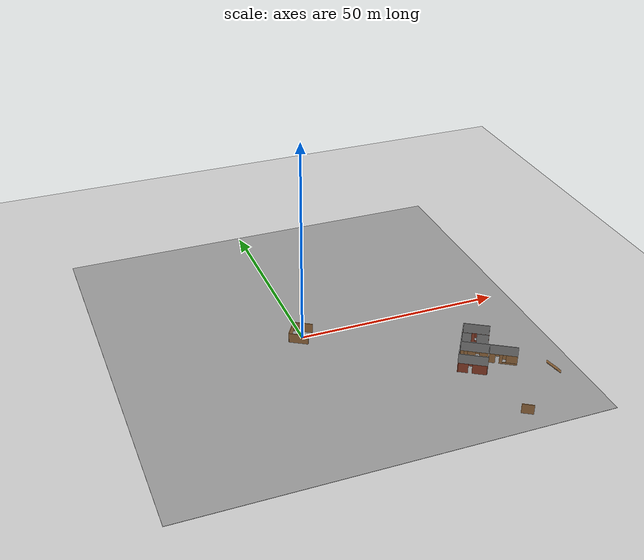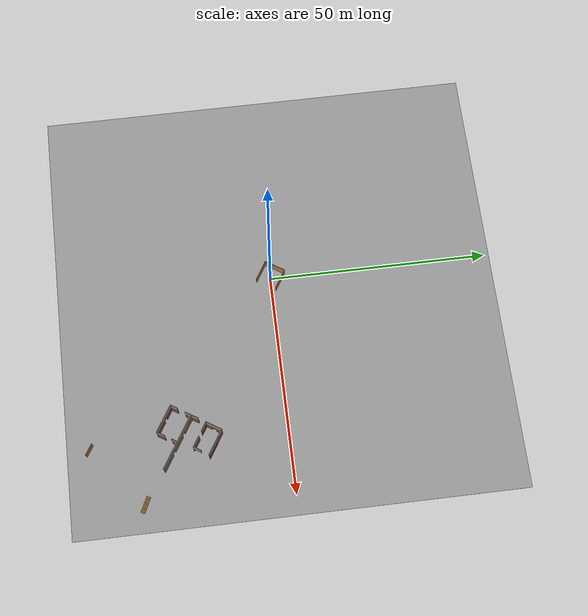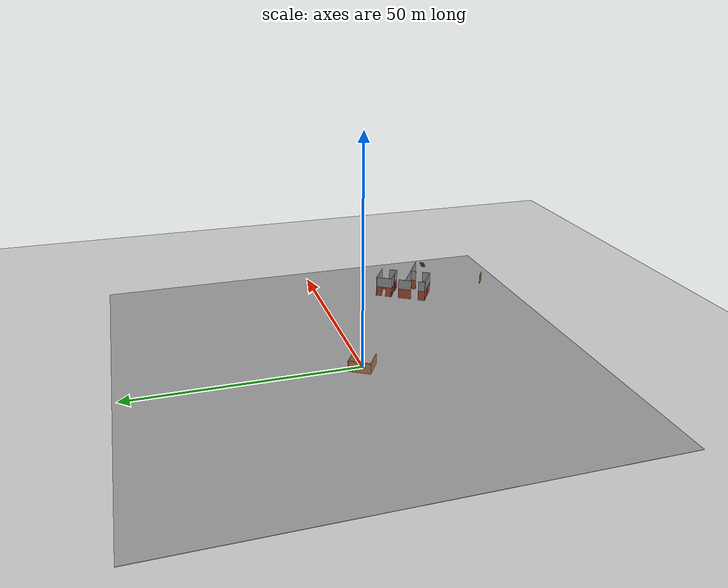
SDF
<sdf version="1.7">
 <world name="default">
  <model name="ground_plane">
   <static>1</static>
   <link name="link">
    <collision name="collision">
     <geometry><plane><normal>0 0 1</normal><size>100 100</size></plane></geometry>
     <surface><friction><ode><mu>100</mu><mu2>50</mu2></ode></friction></surface>
    </collision>
    <visual name="visual">
     <cast_shadows>0</cast_shadows>
     <geometry><plane><normal>0 0 1</normal><size>100 100</size></plane></geometry>
     <material>
      <script><uri>file://media/materials/scripts/gazebo.material</uri><name>Gazebo/Grey</name></script>
     </material>
    </visual>
   </link>
  </model>
  <model name="new_world">
   <pose>22.5456 -21.389 0 0 0 -0.55945</pose>
   <link name="Stairs_4">
    <visual name="Stairs_4_Visual_0">
     <pose>29.6033 4.33952 0.083333 0 -0 -1.5708</pose>
     <geometry><box><size>1 0.233333 0.166667</size></box></geometry>
     <material>
      <script><uri>file://media/materials/scripts/gazebo.material</uri><name>Gazebo/Wood</name></script>
      <ambient>1 1 1 1</ambient>
     </material>
     <meta><layer>0</layer></meta>
    </visual>
    <collision name="Stairs_4_Collision_0">
     <geometry><box><size>1 0.233333 0.166667</size></box></geometry>
     <pose>29.6033 4.33952 0.083333 0 -0 -1.5708</pose>
    </collision>
    <visual name="Stairs_4_Visual_1">
     <pose>29.3699 4.33952 0.25 0 -0 -1.5708</pose>
     <geometry><box><size>1 0.233333 0.166667</size></box></geometry>
     <material>
      <script><uri>file://media/materials/scripts/gazebo.material</uri><name>Gazebo/Wood</name></script>
      <ambient>1 1 1 1</ambient>
     </material>
     <meta><layer>0</layer></meta>
    </visual>
    <collision name="Stairs_4_Collision_1">
     <geometry><box><size>1 0.233333 0.166667</size></box></geometry>
     <pose>29.3699 4.33952 0.25 0 -0 -1.5708</pose>
    </collision>
    <visual name="Stairs_4_Visual_2">
     <pose>29.1366 4.33952 0.416667 0 -0 -1.5708</pose>
     <geometry><box><size>1 0.233333 0.166667</size></box></geometry>
     <material>
      <script><uri>file://media/materials/scripts/gazebo.material</uri><name>Gazebo/Wood</name></script>
      <ambient>1 1 1 1</ambient>
     </material>
     <meta><layer>0</layer></meta>
    </visual>
    <collision name="Stairs_4_Collision_2">
     <geometry><box><size>1 0.233333 0.166667</size></box></geometry>
     <pose>29.1366 4.33952 0.416667 0 -0 -1.5708</pose>
    </collision>
    <visual name="Stairs_4_Visual_3">
     <pose>28.9033 4.33952 0.583333 0 -0 -1.5708</pose>
     <geometry><box><size>1 0.233333 0.166667</size></box></geometry>
     <material>
      <script><uri>file://media/materials/scripts/gazebo.material</uri><name>Gazebo/Wood</name></script>
      <ambient>1 1 1 1</ambient>
     </material>
     <meta><layer>0</layer></meta>
    </visual>
    <collision name="Stairs_4_Collision_3">
     <geometry><box><size>1 0.233333 0.166667</size></box></geometry>
     <pose>28.9033 4.33952 0.583333 0 -0 -1.5708</pose>
    </collision>
    <visual name="Stairs_4_Visual_4">
     <pose>28.6699 4.33952 0.75 0 -0 -1.5708</pose>
     <geometry><box><size>1 0.233333 0.166667</size></box></geometry>
     <material>
      <script><uri>file://media/materials/scripts/gazebo.material</uri><name>Gazebo/Wood</name></script>
      <ambient>1 1 1 1</ambient>
     </material>
     <meta><layer>0</layer></meta>
    </visual>
    <collision name="Stairs_4_Collision_4">
     <geometry><box><size>1 0.233333 0.166667</size></box></geometry>
     <pose>28.6699 4.33952 0.75 0 -0 -1.5708</pose>
    </collision>
    <visual name="Stairs_4_Visual_5">
     <pose>28.4366 4.33952 0.916667 0 -0 -1.5708</pose>
     <geometry><box><size>1 0.233333 0.166667</size></box></geometry>
     <material>
      <script><uri>file://media/materials/scripts/gazebo.material</uri><name>Gazebo/Wood</name></script>
      <ambient>1 1 1 1</ambient>
     </material>
     <meta><layer>0</layer></meta>
    </visual>
    <collision name="Stairs_4_Collision_5">
     <geometry><box><size>1 0.233333 0.166667</size></box></geometry>
     <pose>28.4366 4.33952 0.916667 0 -0 -1.5708</pose>
    </collision>
    <visual name="Stairs_4_Visual_6">
     <pose>28.2033 4.33952 1.08333 0 -0 -1.5708</pose>
     <geometry><box><size>1 0.233333 0.166667</size></box></geometry>
     <material>
      <script><uri>file://media/materials/scripts/gazebo.material</uri><name>Gazebo/Wood</name></script>
      <ambient>1 1 1 1</ambient>
     </material>
     <meta><layer>0</layer></meta>
    </visual>
    <collision name="Stairs_4_Collision_6">
     <geometry><box><size>1 0.233333 0.166667</size></box></geometry>
     <pose>28.2033 4.33952 1.08333 0 -0 -1.5708</pose>
    </collision>
    <visual name="Stairs_4_Visual_7">
     <pose>27.9699 4.33952 1.25 0 -0 -1.5708</pose>
     <geometry><box><size>1 0.233333 0.166667</size></box></geometry>
     <material>
      <script><uri>file://media/materials/scripts/gazebo.material</uri><name>Gazebo/Wood</name></script>
      <ambient>1 1 1 1</ambient>
     </material>
     <meta><layer>0</layer></meta>
    </visual>
    <collision name="Stairs_4_Collision_7">
     <geometry><box><size>1 0.233333 0.166667</size></box></geometry>
     <pose>27.9699 4.33952 1.25 0 -0 -1.5708</pose>
    </collision>
    <visual name="Stairs_4_Visual_8">
     <pose>27.7366 4.33952 1.41667 0 -0 -1.5708</pose>
     <geometry><box><size>1 0.233333 0.166667</size></box></geometry>
     <material>
      <script><uri>file://media/materials/scripts/gazebo.material</uri><name>Gazebo/Wood</name></script>
      <ambient>1 1 1 1</ambient>
     </material>
     <meta><layer>0</layer></meta>
    </visual>
    <collision name="Stairs_4_Collision_8">
     <geometry><box><size>1 0.233333 0.166667</size></box></geometry>
     <pose>27.7366 4.33952 1.41667 0 -0 -1.5708</pose>
    </collision>
    <visual name="Stairs_4_Visual_9">
     <pose>27.5033 4.33952 1.58333 0 -0 -1.5708</pose>
     <geometry><box><size>1 0.233333 0.166667</size></box></geometry>
     <material>
      <script><uri>file://media/materials/scripts/gazebo.material</uri><name>Gazebo/Wood</name></script>
      <ambient>1 1 1 1</ambient>
     </material>
     <meta><layer>0</layer></meta>
    </visual>
    <collision name="Stairs_4_Collision_9">
     <geometry><box><size>1 0.233333 0.166667</size></box></geometry>
     <pose>27.5033 4.33952 1.58333 0 -0 -1.5708</pose>
    </collision>
    <visual name="Stairs_4_Visual_10">
     <pose>27.2699 4.33952 1.75 0 -0 -1.5708</pose>
     <geometry><box><size>1 0.233333 0.166667</size></box></geometry>
     <material>
      <script><uri>file://media/materials/scripts/gazebo.material</uri><name>Gazebo/Wood</name></script>
      <ambient>1 1 1 1</ambient>
     </material>
     <meta><layer>0</layer></meta>
    </visual>
    <collision name="Stairs_4_Collision_10">
     <geometry><box><size>1 0.233333 0.166667</size></box></geometry>
     <pose>27.2699 4.33952 1.75 0 -0 -1.5708</pose>
    </collision>
    <visual name="Stairs_4_Visual_11">
     <pose>27.0366 4.33952 1.91667 0 -0 -1.5708</pose>
     <geometry><box><size>1 0.233333 0.166667</size></box></geometry>
     <material>
      <script><uri>file://media/materials/scripts/gazebo.material</uri><name>Gazebo/Wood</name></script>
      <ambient>1 1 1 1</ambient>
     </material>
     <meta><layer>0</layer></meta>
    </visual>
    <collision name="Stairs_4_Collision_11">
     <geometry><box><size>1 0.233333 0.166667</size></box></geometry>
     <pose>27.0366 4.33952 1.91667 0 -0 -1.5708</pose>
    </collision>
    <visual name="Stairs_4_Visual_12">
     <pose>26.8033 4.33952 2.08333 0 -0 -1.5708</pose>
     <geometry><box><size>1 0.233333 0.166667</size></box></geometry>
     <material>
      <script><uri>file://media/materials/scripts/gazebo.material</uri><name>Gazebo/Wood</name></script>
      <ambient>1 1 1 1</ambient>
     </material>
     <meta><layer>0</layer></meta>
    </visual>
    <collision name="Stairs_4_Collision_12">
     <geometry><box><size>1 0.233333 0.166667</size></box></geometry>
     <pose>26.8033 4.33952 2.08333 0 -0 -1.5708</pose>
    </collision>
    <visual name="Stairs_4_Visual_13">
     <pose>26.5699 4.33952 2.25 0 -0 -1.5708</pose>
     <geometry><box><size>1 0.233333 0.166667</size></box></geometry>
     <material>
      <script><uri>file://media/materials/scripts/gazebo.material</uri><name>Gazebo/Wood</name></script>
      <ambient>1 1 1 1</ambient>
     </material>
     <meta><layer>0</layer></meta>
    </visual>
    <collision name="Stairs_4_Collision_13">
     <geometry><box><size>1 0.233333 0.166667</size></box></geometry>
     <pose>26.5699 4.33952 2.25 0 -0 -1.5708</pose>
    </collision>
    <visual name="Stairs_4_Visual_14">
     <pose>26.3366 4.33952 2.41667 0 -0 -1.5708</pose>
     <geometry><box><size>1 0.233333 0.166667</size></box></geometry>
     <material>
      <script><uri>file://media/materials/scripts/gazebo.material</uri><name>Gazebo/Wood</name></script>
      <ambient>1 1 1 1</ambient>
     </material>
     <meta><layer>0</layer></meta>
    </visual>
    <collision name="Stairs_4_Collision_14">
     <geometry><box><size>1 0.233333 0.166667</size></box></geometry>
     <pose>26.3366 4.33952 2.41667 0 -0 -1.5708</pose>
    </collision>
   </link>
   <link name="Wall_15">
    <pose>9.82012 12.272 0 0 -0 0</pose>
    <visual name="Wall_15_Visual_0">
     <pose>-1.65398 0 1.25 0 -0 0</pose>
     <geometry><box><size>2.94205 0.15 2.5</size></box></geometry>
     <material>
      <script><uri>file://media/materials/scripts/gazebo.material</uri><name>Gazebo/Bricks</name></script>
      <ambient>1 1 1 1</ambient>
     </material>
     <meta><layer>0</layer></meta>
    </visual>
    <collision name="Wall_15_Collision_0">
     <geometry><box><size>2.94205 0.15 2.5</size></box></geometry>
     <pose>-1.65398 0 1.25 0 -0 0</pose>
    </collision>
    <visual name="Wall_15_Visual_1">
     <pose>1.47102 0 0.25 0 -0 0</pose>
     <geometry><box><size>3.30795 0.15 0.5</size></box></geometry>
     <material>
      <script><uri>file://media/materials/scripts/gazebo.material</uri><name>Gazebo/Bricks</name></script>
      <ambient>1 1 1 1</ambient>
     </material>
     <meta><layer>0</layer></meta>
    </visual>
    <collision name="Wall_15_Collision_1">
     <geometry><box><size>3.30795 0.15 0.5</size></box></geometry>
     <pose>1.47102 0 0.25 0 -0 0</pose>
    </collision>
    <visual name="Wall_15_Visual_2">
     <pose>1.87102 0 1.5 0 -0 0</pose>
     <geometry><box><size>2.50795 0.15 2</size></box></geometry>
     <material>
      <script><uri>file://media/materials/scripts/gazebo.material</uri><name>Gazebo/Bricks</name></script>
      <ambient>1 1 1 1</ambient>
     </material>
     <meta><layer>0</layer></meta>
    </visual>
    <collision name="Wall_15_Collision_2">
     <geometry><box><size>2.50795 0.15 2</size></box></geometry>
     <pose>1.87102 0 1.5 0 -0 0</pose>
    </collision>
    <visual name="Wall_15_Visual_3">
     <pose>0.217048 0 1.9 0 -0 0</pose>
     <geometry><box><size>0.8 0.15 1.2</size></box></geometry>
     <material>
      <script><uri>file://media/materials/scripts/gazebo.material</uri><name>Gazebo/Bricks</name></script>
      <ambient>1 1 1 1</ambient>
     </material>
     <meta><layer>0</layer></meta>
    </visual>
    <collision name="Wall_15_Collision_3">
     <geometry><box><size>0.8 0.15 1.2</size></box></geometry>
     <pose>0.217048 0 1.9 0 -0 0</pose>
    </collision>
   </link>
   <link name="Wall_166">
    <collision name="Wall_166_Collision">
     <geometry><box><size>6.25 0.15 2.5</size></box></geometry>
     <pose>0 0 1.25 0 -0 0</pose>
    </collision>
    <visual name="Wall_166_Visual">
     <pose>0 0 1.25 0 -0 0</pose>
     <geometry><box><size>6.25 0.15 2.5</size></box></geometry>
     <material>
      <script><uri>file://media/materials/scripts/gazebo.material</uri><name>Gazebo/Grey</name></script>
      <ambient>1 1 1 1</ambient>
     </material>
     <meta><layer>1</layer></meta>
    </visual>
    <pose>9.82012 12.272 2.5 0 -0 0</pose>
   </link>
   <link name="Wall_171">
    <collision name="Wall_171_Collision">
     <geometry><box><size>4 0.15 2.5</size></box></geometry>
     <pose>0 0 1.25 0 -0 0</pose>
    </collision>
    <visual name="Wall_171_Visual">
     <pose>0 0 1.25 0 -0 0</pose>
     <geometry><box><size>4 0.15 2.5</size></box></geometry>
     <material>
      <script><uri>file://media/materials/scripts/gazebo.material</uri><name>Gazebo/Grey</name></script>
      <ambient>1 1 1 1</ambient>
     </material>
     <meta><layer>1</layer></meta>
    </visual>
    <pose>6.77012 10.347 2.5 0 -0 -1.5708</pose>
   </link>
   <link name="Wall_172">
    <collision name="Wall_172_Collision">
     <geometry><box><size>3.25 0.15 2.5</size></box></geometry>
     <pose>0 0 1.25 0 -0 0</pose>
    </collision>
    <visual name="Wall_172_Visual">
     <pose>0 0 1.25 0 -0 0</pose>
     <geometry><box><size>3.25 0.15 2.5</size></box></geometry>
     <material>
      <script><uri>file://media/materials/scripts/gazebo.material</uri><name>Gazebo/Grey</name></script>
      <ambient>1 1 1 1</ambient>
     </material>
     <meta><layer>1</layer></meta>
    </visual>
    <pose>6.75883 4.95214 2.5 0 -0 -1.5708</pose>
   </link>
   <link name="Wall_173">
    <collision name="Wall_173_Collision">
     <geometry><box><size>1.75 0.15 2.5</size></box></geometry>
     <pose>0 0 1.25 0 -0 0</pose>
    </collision>
    <visual name="Wall_173_Visual">
     <pose>0 0 1.25 0 -0 0</pose>
     <geometry><box><size>1.75 0.15 2.5</size></box></geometry>
     <material>
      <script><uri>file://media/materials/scripts/gazebo.material</uri><name>Gazebo/Grey</name></script>
      <ambient>1 1 1 1</ambient>
     </material>
     <meta><layer>1</layer></meta>
    </visual>
    <pose>6.72823 0.593575 2.5 0 -0 -1.5708</pose>
   </link>
   <link name="Wall_176">
    <collision name="Wall_176_Collision">
     <geometry><box><size>6.75 0.15 2.5</size></box></geometry>
     <pose>0 0 1.25 0 -0 0</pose>
    </collision>
    <visual name="Wall_176_Visual">
     <pose>0 0 1.25 0 -0 0</pose>
     <geometry><box><size>6.75 0.15 2.5</size></box></geometry>
     <material>
      <script><uri>file://media/materials/scripts/gazebo.material</uri><name>Gazebo/Grey</name></script>
      <ambient>1 1 1 1</ambient>
     </material>
     <meta><layer>1</layer></meta>
    </visual>
    <pose>10.0282 -0.206425 2.5 0 -0 0</pose>
   </link>
   <link name="Wall_178">
    <collision name="Wall_178_Collision">
     <geometry><box><size>2.25 0.15 2.5</size></box></geometry>
     <pose>0 0 1.25 0 -0 0</pose>
    </collision>
    <visual name="Wall_178_Visual">
     <pose>0 0 1.25 0 -0 0</pose>
     <geometry><box><size>2.25 0.15 2.5</size></box></geometry>
     <material>
      <script><uri>file://media/materials/scripts/gazebo.material</uri><name>Gazebo/Grey</name></script>
      <ambient>1 1 1 1</ambient>
     </material>
     <meta><layer>1</layer></meta>
    </visual>
    <pose>7.82012 8.42205 2.5 0 -0 0</pose>
   </link>
   <link name="Wall_179">
    <collision name="Wall_179_Collision">
     <geometry><box><size>2 0.15 2.5</size></box></geometry>
     <pose>0 0 1.25 0 -0 0</pose>
    </collision>
    <visual name="Wall_179_Visual">
     <pose>0 0 1.25 0 -0 0</pose>
     <geometry><box><size>2 0.15 2.5</size></box></geometry>
     <material>
      <script><uri>file://media/materials/scripts/gazebo.material</uri><name>Gazebo/Grey</name></script>
      <ambient>1 1 1 1</ambient>
     </material>
     <meta><layer>1</layer></meta>
    </visual>
    <pose>12.8315 9.36573 2.5 0 -0 1.5708</pose>
   </link>
   <link name="Wall_181">
    <collision name="Wall_181_Collision">
     <geometry><box><size>2.75 0.15 2.5</size></box></geometry>
     <pose>0 0 1.25 0 -0 0</pose>
    </collision>
    <visual name="Wall_181_Visual">
     <pose>0 0 1.25 0 -0 0</pose>
     <geometry><box><size>2.75 0.15 2.5</size></box></geometry>
     <material>
      <script><uri>file://media/materials/scripts/gazebo.material</uri><name>Gazebo/Grey</name></script>
      <ambient>1 1 1 1</ambient>
     </material>
     <meta><layer>1</layer></meta>
    </visual>
    <pose>11.5201 8.42205 2.5 0 -0 0</pose>
   </link>
   <link name="Wall_182">
    <collision name="Wall_182_Collision">
     <geometry><box><size>13 0.15 2.5</size></box></geometry>
     <pose>0 0 1.25 0 -0 0</pose>
    </collision>
    <visual name="Wall_182_Visual">
     <pose>0 0 1.25 0 -0 0</pose>
     <geometry><box><size>13 0.15 2.5</size></box></geometry>
     <material>
      <script><uri>file://media/materials/scripts/gazebo.material</uri><name>Gazebo/Grey</name></script>
      <ambient>1 1 1 1</ambient>
     </material>
     <meta><layer>1</layer></meta>
    </visual>
    <pose>13.3384 4.80537 2.5 0 -0 0</pose>
   </link>
   <link name="Wall_185">
    <collision name="Wall_185_Collision">
     <geometry><box><size>2 0.15 2.5</size></box></geometry>
     <pose>0 0 1.25 0 -0 0</pose>
    </collision>
    <visual name="Wall_185_Visual">
     <pose>0 0 1.25 0 -0 0</pose>
     <geometry><box><size>2 0.15 2.5</size></box></geometry>
     <material>
      <script><uri>file://media/materials/scripts/gazebo.material</uri><name>Gazebo/Grey</name></script>
      <ambient>1 1 1 1</ambient>
     </material>
     <meta><layer>1</layer></meta>
    </visual>
    <pose>13.3282 0.718575 2.5 0 -0 1.5708</pose>
   </link>
   <link name="Wall_186">
    <collision name="Wall_186_Collision">
     <geometry><box><size>1.25 0.15 2.5</size></box></geometry>
     <pose>0 0 1.25 0 -0 0</pose>
    </collision>
    <visual name="Wall_186_Visual">
     <pose>0 0 1.25 0 -0 0</pose>
     <geometry><box><size>1.25 0.15 2.5</size></box></geometry>
     <material>
      <script><uri>file://media/materials/scripts/gazebo.material</uri><name>Gazebo/Grey</name></script>
      <ambient>1 1 1 1</ambient>
     </material>
     <meta><layer>1</layer></meta>
    </visual>
    <pose>13.3282 4.04357 2.5 0 -0 1.5708</pose>
   </link>
   <link name="Wall_208">
    <collision name="Wall_208_Collision">
     <geometry><box><size>2.75 0.15 2.5</size></box></geometry>
     <pose>0 0 1.25 0 -0 0</pose>
    </collision>
    <visual name="Wall_208_Visual">
     <pose>0 0 1.25 0 -0 0</pose>
     <geometry><box><size>2.75 0.15 2.5</size></box></geometry>
     <material>
      <script><uri>file://media/materials/scripts/gazebo.material</uri><name>Gazebo/Wood</name></script>
      <ambient>1 1 1 1</ambient>
     </material>
     <meta><layer>0</layer></meta>
    </visual>
    <pose>22.7009 -12.278 0 0 -0 0</pose>
   </link>
   <link name="Wall_216">
    <collision name="Wall_216_Collision">
     <geometry><box><size>4.75 0.15 2.5</size></box></geometry>
     <pose>0 0 1.25 0 -0 0</pose>
    </collision>
    <visual name="Wall_216_Visual">
     <pose>0 0 1.25 0 -0 0</pose>
     <geometry><box><size>4.75 0.15 2.5</size></box></geometry>
     <material>
      <script><uri>file://media/materials/scripts/gazebo.material</uri><name>Gazebo/Wood</name></script>
      <ambient>1 1 1 1</ambient>
     </material>
     <meta><layer>0</layer></meta>
    </visual>
    <pose>-30.8296 8.53108 0 0 -0 0</pose>
   </link>
   <link name="Wall_218">
    <collision name="Wall_218_Collision">
     <geometry><box><size>5 0.15 2.5</size></box></geometry>
     <pose>0 0 1.25 0 -0 0</pose>
    </collision>
    <visual name="Wall_218_Visual">
     <pose>0 0 1.25 0 -0 0</pose>
     <geometry><box><size>5 0.15 2.5</size></box></geometry>
     <material>
      <script><uri>file://media/materials/scripts/gazebo.material</uri><name>Gazebo/Wood</name></script>
      <ambient>1 1 1 1</ambient>
     </material>
     <meta><layer>0</layer></meta>
    </visual>
    <pose>-33.1296 6.10608 0 0 -0 -1.5708</pose>
   </link>
   <link name="Wall_219">
    <collision name="Wall_219_Collision">
     <geometry><box><size>4.75 0.15 2.5</size></box></geometry>
     <pose>0 0 1.25 0 -0 0</pose>
    </collision>
    <visual name="Wall_219_Visual">
     <pose>0 0 1.25 0 -0 0</pose>
     <geometry><box><size>4.75 0.15 2.5</size></box></geometry>
     <material>
      <script><uri>file://media/materials/scripts/gazebo.material</uri><name>Gazebo/Wood</name></script>
      <ambient>1 1 1 1</ambient>
     </material>
     <meta><layer>0</layer></meta>
    </visual>
    <pose>-30.8296 3.68108 0 0 -0 0</pose>
   </link>
   <link name="Wall_28">
    <pose>6.77012 10.347 0 0 -0 -1.5708</pose>
    <visual name="Wall_28_Visual_0">
     <pose>-1.22892 0 1.25 0 -0 0</pose>
     <geometry><box><size>1.54216 0.15 2.5</size></box></geometry>
     <material>
      <script><uri>file://media/materials/scripts/gazebo.material</uri><name>Gazebo/Bricks</name></script>
      <ambient>1 1 1 1</ambient>
     </material>
     <meta><layer>0</layer></meta>
    </visual>
    <collision name="Wall_28_Collision_0">
     <geometry><box><size>1.54216 0.15 2.5</size></box></geometry>
     <pose>-1.22892 0 1.25 0 -0 0</pose>
    </collision>
    <visual name="Wall_28_Visual_1">
     <pose>1.22108 0 1.25 0 -0 0</pose>
     <geometry><box><size>1.55784 0.15 2.5</size></box></geometry>
     <material>
      <script><uri>file://media/materials/scripts/gazebo.material</uri><name>Gazebo/Bricks</name></script>
      <ambient>1 1 1 1</ambient>
     </material>
     <meta><layer>0</layer></meta>
    </visual>
    <collision name="Wall_28_Collision_1">
     <geometry><box><size>1.55784 0.15 2.5</size></box></geometry>
     <pose>1.22108 0 1.25 0 -0 0</pose>
    </collision>
    <visual name="Wall_28_Visual_2">
     <pose>-0.007843 0 2.25 0 -0 0</pose>
     <geometry><box><size>0.9 0.15 0.5</size></box></geometry>
     <material>
      <script><uri>file://media/materials/scripts/gazebo.material</uri><name>Gazebo/Bricks</name></script>
      <ambient>1 1 1 1</ambient>
     </material>
     <meta><layer>0</layer></meta>
    </visual>
    <collision name="Wall_28_Collision_2">
     <geometry><box><size>0.9 0.15 0.5</size></box></geometry>
     <pose>-0.007843 0 2.25 0 -0 0</pose>
    </collision>
   </link>
   <link name="Wall_30">
    <collision name="Wall_30_Collision">
     <geometry><box><size>3.25 0.15 2.5</size></box></geometry>
     <pose>0 0 1.25 0 -0 0</pose>
    </collision>
    <visual name="Wall_30_Visual">
     <pose>0 0 1.25 0 -0 0</pose>
     <geometry><box><size>3.25 0.15 2.5</size></box></geometry>
     <material>
      <script><uri>file://media/materials/scripts/gazebo.material</uri><name>Gazebo/Bricks</name></script>
      <ambient>1 1 1 1</ambient>
     </material>
     <meta><layer>0</layer></meta>
    </visual>
    <pose>6.75883 4.95214 0 0 -0 -1.5708</pose>
   </link>
   <link name="Wall_32">
    <collision name="Wall_32_Collision">
     <geometry><box><size>1.75 0.15 2.5</size></box></geometry>
     <pose>0 0 1.25 0 -0 0</pose>
    </collision>
    <visual name="Wall_32_Visual">
     <pose>0 0 1.25 0 -0 0</pose>
     <geometry><box><size>1.75 0.15 2.5</size></box></geometry>
     <material>
      <script><uri>file://media/materials/scripts/gazebo.material</uri><name>Gazebo/Bricks</name></script>
      <ambient>1 1 1 1</ambient>
     </material>
     <meta><layer>0</layer></meta>
    </visual>
    <pose>6.72841 0.593697 0 0 -0 -1.57058</pose>
   </link>
   <link name="Wall_43">
    <pose>10.0286 -0.206181 0 0 -0 0</pose>
    <visual name="Wall_43_Visual_0">
     <pose>-2.17501 0 1.25 0 -0 0</pose>
     <geometry><box><size>2.39999 0.15 2.5</size></box></geometry>
     <material>
      <script><uri>file://media/materials/scripts/gazebo.material</uri><name>Gazebo/Bricks</name></script>
      <ambient>1 1 1 1</ambient>
     </material>
     <meta><layer>0</layer></meta>
    </visual>
    <collision name="Wall_43_Collision_0">
     <geometry><box><size>2.39999 0.15 2.5</size></box></geometry>
     <pose>-2.17501 0 1.25 0 -0 0</pose>
    </collision>
    <visual name="Wall_43_Visual_1">
     <pose>1.65 0 1.25 0 -0 0</pose>
     <geometry><box><size>3.45001 0.15 2.5</size></box></geometry>
     <material>
      <script><uri>file://media/materials/scripts/gazebo.material</uri><name>Gazebo/Bricks</name></script>
      <ambient>1 1 1 1</ambient>
     </material>
     <meta><layer>0</layer></meta>
    </visual>
    <collision name="Wall_43_Collision_1">
     <geometry><box><size>3.45001 0.15 2.5</size></box></geometry>
     <pose>1.65 0 1.25 0 -0 0</pose>
    </collision>
    <visual name="Wall_43_Visual_2">
     <pose>-0.525009 0 2.25 0 -0 0</pose>
     <geometry><box><size>0.9 0.15 0.5</size></box></geometry>
     <material>
      <script><uri>file://media/materials/scripts/gazebo.material</uri><name>Gazebo/Bricks</name></script>
      <ambient>1 1 1 1</ambient>
     </material>
     <meta><layer>0</layer></meta>
    </visual>
    <collision name="Wall_43_Collision_2">
     <geometry><box><size>0.9 0.15 0.5</size></box></geometry>
     <pose>-0.525009 0 2.25 0 -0 0</pose>
    </collision>
   </link>
   <link name="Wall_49">
    <pose>7.82012 8.42205 0 0 -0 0</pose>
    <visual name="Wall_49_Visual_0">
     <pose>-0.867644 0 1.25 0 -0 0</pose>
     <geometry><box><size>0.514713 0.15 2.5</size></box></geometry>
     <material>
      <script><uri>file://media/materials/scripts/gazebo.material</uri><name>Gazebo/Bricks</name></script>
      <ambient>1 1 1 1</ambient>
     </material>
     <meta><layer>0</layer></meta>
    </visual>
    <collision name="Wall_49_Collision_0">
     <geometry><box><size>0.514713 0.15 2.5</size></box></geometry>
     <pose>-0.867644 0 1.25 0 -0 0</pose>
    </collision>
    <visual name="Wall_49_Visual_1">
     <pose>0.257356 0 0.25 0 -0 0</pose>
     <geometry><box><size>1.73529 0.15 0.5</size></box></geometry>
     <material>
      <script><uri>file://media/materials/scripts/gazebo.material</uri><name>Gazebo/Bricks</name></script>
      <ambient>1 1 1 1</ambient>
     </material>
     <meta><layer>0</layer></meta>
    </visual>
    <collision name="Wall_49_Collision_1">
     <geometry><box><size>1.73529 0.15 0.5</size></box></geometry>
     <pose>0.257356 0 0.25 0 -0 0</pose>
    </collision>
    <visual name="Wall_49_Visual_2">
     <pose>0.657356 0 1.5 0 -0 0</pose>
     <geometry><box><size>0.935287 0.15 2</size></box></geometry>
     <material>
      <script><uri>file://media/materials/scripts/gazebo.material</uri><name>Gazebo/Bricks</name></script>
      <ambient>1 1 1 1</ambient>
     </material>
     <meta><layer>0</layer></meta>
    </visual>
    <collision name="Wall_49_Collision_2">
     <geometry><box><size>0.935287 0.15 2</size></box></geometry>
     <pose>0.657356 0 1.5 0 -0 0</pose>
    </collision>
    <visual name="Wall_49_Visual_3">
     <pose>-0.210287 0 1.9 0 -0 0</pose>
     <geometry><box><size>0.8 0.15 1.2</size></box></geometry>
     <material>
      <script><uri>file://media/materials/scripts/gazebo.material</uri><name>Gazebo/Bricks</name></script>
      <ambient>1 1 1 1</ambient>
     </material>
     <meta><layer>0</layer></meta>
    </visual>
    <collision name="Wall_49_Collision_3">
     <geometry><box><size>0.8 0.15 1.2</size></box></geometry>
     <pose>-0.210287 0 1.9 0 -0 0</pose>
    </collision>
   </link>
   <link name="Wall_58">
    <pose>11.5201 8.42205 0 0 -0 0</pose>
    <visual name="Wall_58_Visual_0">
     <pose>-1.01335 0 1.25 0 -0 0</pose>
     <geometry><box><size>0.723304 0.15 2.5</size></box></geometry>
     <material>
      <script><uri>file://media/materials/scripts/gazebo.material</uri><name>Gazebo/Bricks</name></script>
      <ambient>1 1 1 1</ambient>
     </material>
     <meta><layer>0</layer></meta>
    </visual>
    <collision name="Wall_58_Collision_0">
     <geometry><box><size>0.723304 0.15 2.5</size></box></geometry>
     <pose>-1.01335 0 1.25 0 -0 0</pose>
    </collision>
    <visual name="Wall_58_Visual_1">
     <pose>0.361652 0 0.25 0 -0 0</pose>
     <geometry><box><size>2.0267 0.15 0.5</size></box></geometry>
     <material>
      <script><uri>file://media/materials/scripts/gazebo.material</uri><name>Gazebo/Bricks</name></script>
      <ambient>1 1 1 1</ambient>
     </material>
     <meta><layer>0</layer></meta>
    </visual>
    <collision name="Wall_58_Collision_1">
     <geometry><box><size>2.0267 0.15 0.5</size></box></geometry>
     <pose>0.361652 0 0.25 0 -0 0</pose>
    </collision>
    <visual name="Wall_58_Visual_2">
     <pose>0.761652 0 1.5 0 -0 0</pose>
     <geometry><box><size>1.2267 0.15 2</size></box></geometry>
     <material>
      <script><uri>file://media/materials/scripts/gazebo.material</uri><name>Gazebo/Bricks</name></script>
      <ambient>1 1 1 1</ambient>
     </material>
     <meta><layer>0</layer></meta>
    </visual>
    <collision name="Wall_58_Collision_2">
     <geometry><box><size>1.2267 0.15 2</size></box></geometry>
     <pose>0.761652 0 1.5 0 -0 0</pose>
    </collision>
    <visual name="Wall_58_Visual_3">
     <pose>-0.251696 0 1.9 0 -0 0</pose>
     <geometry><box><size>0.8 0.15 1.2</size></box></geometry>
     <material>
      <script><uri>file://media/materials/scripts/gazebo.material</uri><name>Gazebo/Bricks</name></script>
      <ambient>1 1 1 1</ambient>
     </material>
     <meta><layer>0</layer></meta>
    </visual>
    <collision name="Wall_58_Collision_3">
     <geometry><box><size>0.8 0.15 1.2</size></box></geometry>
     <pose>-0.251696 0 1.9 0 -0 0</pose>
    </collision>
   </link>
   <link name="Wall_60">
    <pose>13.3386 4.80582 0 0 -0 0</pose>
    <visual name="Wall_60_Visual_0">
     <pose>-6.08003 0 1.25 0 -0 0</pose>
     <geometry><box><size>0.839951 0.15 2.5</size></box></geometry>
     <material>
      <script><uri>file://media/materials/scripts/gazebo.material</uri><name>Gazebo/Wood</name></script>
      <ambient>1 1 1 1</ambient>
     </material>
     <meta><layer>0</layer></meta>
    </visual>
    <collision name="Wall_60_Collision_0">
     <geometry><box><size>0.839951 0.15 2.5</size></box></geometry>
     <pose>-6.08003 0 1.25 0 -0 0</pose>
    </collision>
    <visual name="Wall_60_Visual_1">
     <pose>-0.342281 0 1.25 0 -0 0</pose>
     <geometry><box><size>3.62555 0.15 2.5</size></box></geometry>
     <material>
      <script><uri>file://media/materials/scripts/gazebo.material</uri><name>Gazebo/Wood</name></script>
      <ambient>1 1 1 1</ambient>
     </material>
     <meta><layer>0</layer></meta>
    </visual>
    <collision name="Wall_60_Collision_1">
     <geometry><box><size>3.62555 0.15 2.5</size></box></geometry>
     <pose>-0.342281 0 1.25 0 -0 0</pose>
    </collision>
    <visual name="Wall_60_Visual_2">
     <pose>2.73998 0 1.25 0 -0 0</pose>
     <geometry><box><size>0.738972 0.15 2.5</size></box></geometry>
     <material>
      <script><uri>file://media/materials/scripts/gazebo.material</uri><name>Gazebo/Wood</name></script>
      <ambient>1 1 1 1</ambient>
     </material>
     <meta><layer>0</layer></meta>
    </visual>
    <collision name="Wall_60_Collision_2">
     <geometry><box><size>0.738972 0.15 2.5</size></box></geometry>
     <pose>2.73998 0 1.25 0 -0 0</pose>
    </collision>
    <visual name="Wall_60_Visual_3">
     <pose>-4.35755 0 0.25 0 -0 0</pose>
     <geometry><box><size>2.60499 0.15 0.5</size></box></geometry>
     <material>
      <script><uri>file://media/materials/scripts/gazebo.material</uri><name>Gazebo/Wood</name></script>
      <ambient>1 1 1 1</ambient>
     </material>
     <meta><layer>0</layer></meta>
    </visual>
    <collision name="Wall_60_Collision_3">
     <geometry><box><size>2.60499 0.15 0.5</size></box></geometry>
     <pose>-4.35755 0 0.25 0 -0 0</pose>
    </collision>
    <visual name="Wall_60_Visual_4">
     <pose>4.80473 0 0.25 0 -0 0</pose>
     <geometry><box><size>3.39053 0.15 0.5</size></box></geometry>
     <material>
      <script><uri>file://media/materials/scripts/gazebo.material</uri><name>Gazebo/Wood</name></script>
      <ambient>1 1 1 1</ambient>
     </material>
     <meta><layer>0</layer></meta>
    </visual>
    <collision name="Wall_60_Collision_4">
     <geometry><box><size>3.39053 0.15 0.5</size></box></geometry>
     <pose>4.80473 0 0.25 0 -0 0</pose>
    </collision>
    <visual name="Wall_60_Visual_5">
     <pose>-3.95755 0 1.5 0 -0 0</pose>
     <geometry><box><size>1.80499 0.15 2</size></box></geometry>
     <material>
      <script><uri>file://media/materials/scripts/gazebo.material</uri><name>Gazebo/Wood</name></script>
      <ambient>1 1 1 1</ambient>
     </material>
     <meta><layer>0</layer></meta>
    </visual>
    <collision name="Wall_60_Collision_5">
     <geometry><box><size>1.80499 0.15 2</size></box></geometry>
     <pose>-3.95755 0 1.5 0 -0 0</pose>
    </collision>
    <visual name="Wall_60_Visual_6">
     <pose>-3.95755 0 1.5 0 -0 0</pose>
     <geometry><box><size>1.80499 0.15 2</size></box></geometry>
     <material>
      <script><uri>file://media/materials/scripts/gazebo.material</uri><name>Gazebo/Wood</name></script>
      <ambient>1 1 1 1</ambient>
     </material>
     <meta><layer>0</layer></meta>
    </visual>
    <collision name="Wall_60_Collision_6">
     <geometry><box><size>1.80499 0.15 2</size></box></geometry>
     <pose>-3.95755 0 1.5 0 -0 0</pose>
    </collision>
    <visual name="Wall_60_Visual_7">
     <pose>5.20473 0 1.5 0 -0 0</pose>
     <geometry><box><size>2.59053 0.15 2</size></box></geometry>
     <material>
      <script><uri>file://media/materials/scripts/gazebo.material</uri><name>Gazebo/Wood</name></script>
      <ambient>1 1 1 1</ambient>
     </material>
     <meta><layer>0</layer></meta>
    </visual>
    <collision name="Wall_60_Collision_7">
     <geometry><box><size>2.59053 0.15 2</size></box></geometry>
     <pose>5.20473 0 1.5 0 -0 0</pose>
    </collision>
    <visual name="Wall_60_Visual_8">
     <pose>-5.26005 0 1.9 0 -0 0</pose>
     <geometry><box><size>0.8 0.15 1.2</size></box></geometry>
     <material>
      <script><uri>file://media/materials/scripts/gazebo.material</uri><name>Gazebo/Wood</name></script>
      <ambient>1 1 1 1</ambient>
     </material>
     <meta><layer>0</layer></meta>
    </visual>
    <collision name="Wall_60_Collision_8">
     <geometry><box><size>0.8 0.15 1.2</size></box></geometry>
     <pose>-5.26005 0 1.9 0 -0 0</pose>
    </collision>
    <visual name="Wall_60_Visual_9">
     <pose>3.50947 0 1.9 0 -0 0</pose>
     <geometry><box><size>0.8 0.15 1.2</size></box></geometry>
     <material>
      <script><uri>file://media/materials/scripts/gazebo.material</uri><name>Gazebo/Wood</name></script>
      <ambient>1 1 1 1</ambient>
     </material>
     <meta><layer>0</layer></meta>
    </visual>
    <collision name="Wall_60_Collision_9">
     <geometry><box><size>0.8 0.15 1.2</size></box></geometry>
     <pose>3.50947 0 1.9 0 -0 0</pose>
    </collision>
    <visual name="Wall_60_Visual_10">
     <pose>1.9205 0 2.25 0 -0 0</pose>
     <geometry><box><size>0.9 0.15 0.5</size></box></geometry>
     <material>
      <script><uri>file://media/materials/scripts/gazebo.material</uri><name>Gazebo/Wood</name></script>
      <ambient>1 1 1 1</ambient>
     </material>
     <meta><layer>0</layer></meta>
    </visual>
    <collision name="Wall_60_Collision_10">
     <geometry><box><size>0.9 0.15 0.5</size></box></geometry>
     <pose>1.9205 0 2.25 0 -0 0</pose>
    </collision>
    <visual name="Wall_60_Visual_11">
     <pose>-2.60506 0 2.25 0 -0 0</pose>
     <geometry><box><size>0.9 0.15 0.5</size></box></geometry>
     <material>
      <script><uri>file://media/materials/scripts/gazebo.material</uri><name>Gazebo/Wood</name></script>
      <ambient>1 1 1 1</ambient>
     </material>
     <meta><layer>0</layer></meta>
    </visual>
    <collision name="Wall_60_Collision_11">
     <geometry><box><size>0.9 0.15 0.5</size></box></geometry>
     <pose>-2.60506 0 2.25 0 -0 0</pose>
    </collision>
    <visual name="Wall_60_Visual_12">
     <pose>-2.60506 0 2.25 0 -0 0</pose>
     <geometry><box><size>0.9 0.15 0.5</size></box></geometry>
     <material>
      <script><uri>file://media/materials/scripts/gazebo.material</uri><name>Gazebo/Wood</name></script>
      <ambient>1 1 1 1</ambient>
     </material>
     <meta><layer>0</layer></meta>
    </visual>
    <collision name="Wall_60_Collision_12">
     <geometry><box><size>0.9 0.15 0.5</size></box></geometry>
     <pose>-2.60506 0 2.25 0 -0 0</pose>
    </collision>
   </link>
   <link name="Wall_66">
    <collision name="Wall_66_Collision">
     <geometry><box><size>2 0.15 2.5</size></box></geometry>
     <pose>0 0 1.25 0 -0 0</pose>
    </collision>
    <visual name="Wall_66_Visual">
     <pose>0 0 1.25 0 -0 0</pose>
     <geometry><box><size>2 0.15 2.5</size></box></geometry>
     <material>
      <script><uri>file://media/materials/scripts/gazebo.material</uri><name>Gazebo/Bricks</name></script>
      <ambient>1 1 1 1</ambient>
     </material>
     <meta><layer>0</layer></meta>
    </visual>
    <pose>13.3286 0.718819 0 0 -0 1.5708</pose>
   </link>
   <link name="Wall_68">
    <collision name="Wall_68_Collision">
     <geometry><box><size>1.25 0.15 2.5</size></box></geometry>
     <pose>0 0 1.25 0 -0 0</pose>
    </collision>
    <visual name="Wall_68_Visual">
     <pose>0 0 1.25 0 -0 0</pose>
     <geometry><box><size>1.25 0.15 2.5</size></box></geometry>
     <material>
      <script><uri>file://media/materials/scripts/gazebo.material</uri><name>Gazebo/Bricks</name></script>
      <ambient>1 1 1 1</ambient>
     </material>
     <meta><layer>0</layer></meta>
    </visual>
    <pose>13.3282 4.04357 0 0 -0 1.5708</pose>
   </link>
   <static>1</static>
  </model>
  <model name="ground_plane_0">
   <static>1</static>
   <link name="link">
    <collision name="collision">
     <geometry><plane><normal>0 0 1</normal><size>100 100</size></plane></geometry>
     <surface><friction><ode><mu>100</mu><mu2>50</mu2></ode></friction></surface>
    </collision>
    <visual name="visual">
     <cast_shadows>0</cast_shadows>
     <geometry><plane><normal>0 0 1</normal><size>100 100</size></plane></geometry>
     <material>
      <script><uri>file://media/materials/scripts/gazebo.material</uri><name>Gazebo/Grey</name></script>
     </material>
    </visual>
   </link>
   <pose>4.46962 1.05622 0 0 -0 0</pose>
  </model>
 </world>
</sdf>
